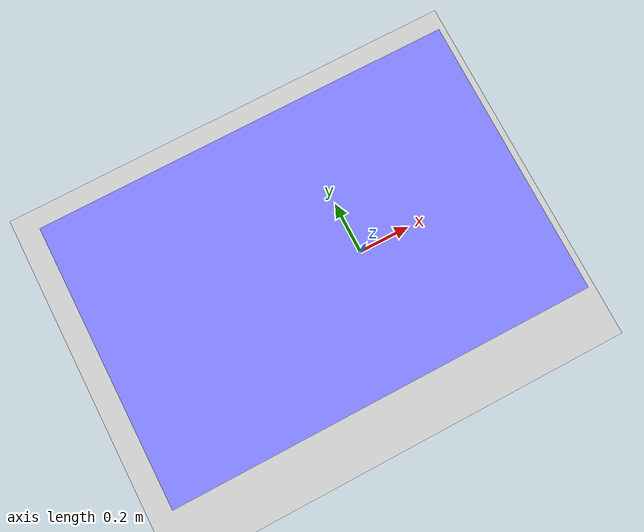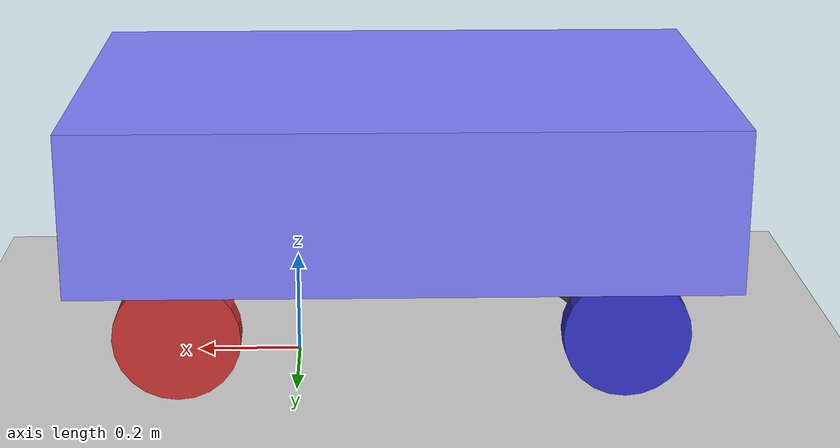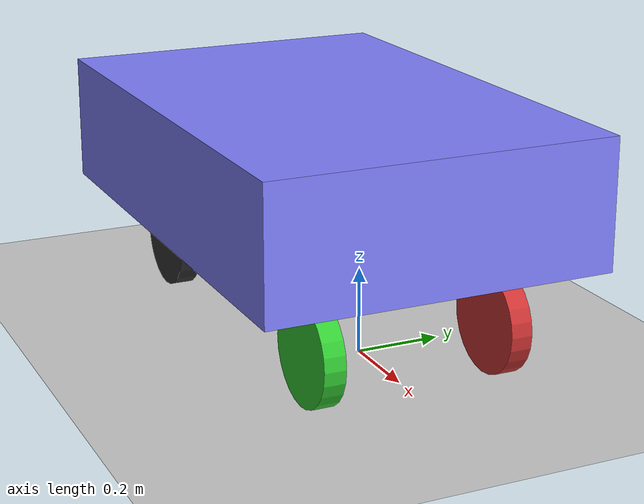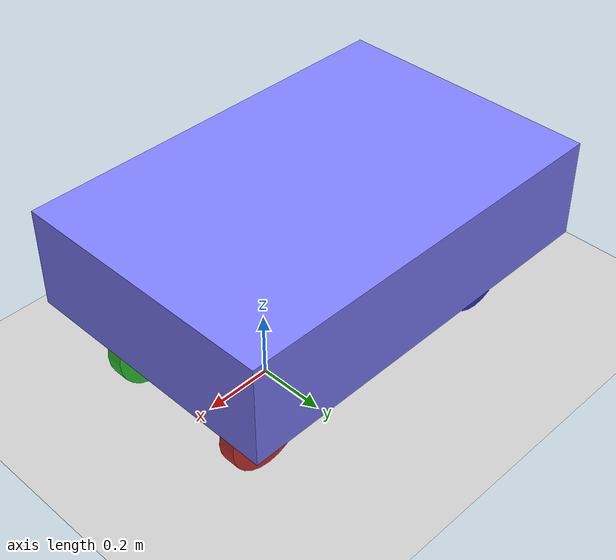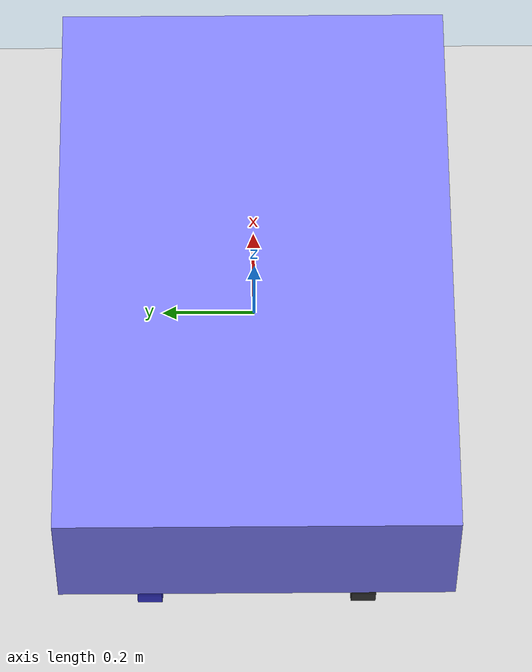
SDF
<?xml version="1.0" ?>
<sdf version="1.6">
  <world name="swerve_drive">

    <physics name="1ms" type="ignored">
      <max_step_size>0.001</max_step_size>
      <real_time_factor>1.0</real_time_factor>
    </physics>
    <plugin
      filename="gz-sim-physics-system"
      name="gz::sim::systems::Physics">
    </plugin>
    <plugin
      filename="gz-sim-user-commands-system"
      name="gz::sim::systems::UserCommands">
    </plugin>
    <plugin
      filename="gz-sim-scene-broadcaster-system"
      name="gz::sim::systems::SceneBroadcaster">
    </plugin>

    <light type="directional" name="sun">
      <cast_shadows>true</cast_shadows>
      <pose>0 0 10 0 0 0</pose>
      <diffuse>1 1 1 1</diffuse>
      <specular>0.5 0.5 0.5 1</specular>
      <attenuation>
        <range>1000</range>
        <constant>0.9</constant>
        <linear>0.01</linear>
        <quadratic>0.001</quadratic>
      </attenuation>
      <direction>-0.5 0.1 -0.9</direction>
    </light>

    <model name="ground_plane">
      <static>true</static>
      <link name="link">
        <collision name="collision">
          <geometry>
            <plane>
              <normal>0 0 1</normal>
              <size>100 100</size>
            </plane>
          </geometry>
          <surface>
            <friction>
              <ode>
                <mu>50</mu>
              </ode>
              <bullet>
                <friction>1</friction>
                <rolling_friction>0.1</rolling_friction>
              </bullet>
            </friction>
          </surface>
        </collision>
        <visual name="visual">
          <geometry>
            <plane>
              <normal>0 0 1</normal>
              <size>100 100</size>
            </plane>
          </geometry>
          <material>
            <ambient>0.8 0.8 0.8 1</ambient>
            <diffuse>0.8 0.8 0.8 1</diffuse>
            <specular>0.8 0.8 0.8 1</specular>
          </material>
        </visual>
      </link>
    </model>

    <model name='vehicle_blue'>
      <pose>0 0 0.41 0 -0 0</pose>

      <link name='chassis'>
        <pose>-0.2 0 0 0 -0 0</pose>
        <inertial>
          <mass>2.0</mass>
          <inertia>
            <ixx>0.118</ixx>
            <ixy>0</ixy>
            <ixz>0</ixz>
            <iyy>0.118</iyy>
            <iyz>0</iyz>
            <izz>0.205</izz>
          </inertia>
        </inertial>
        <visual name='visual'>
          <geometry>
            <box>
              <size>1.2 0.8 0.3</size>
            </box>
          </geometry>
          <material>
            <ambient>0.5 0.5 1.0 1</ambient>
            <diffuse>0.5 0.5 1.0 1</diffuse>
            <specular>0.0 0.0 1.0 1</specular>
          </material>
        </visual>
        <collision name='collision'>
          <geometry>
            <box>
              <size>0.8 0.8 0.3</size>
            </box>
          </geometry>
        </collision>
      </link>

      <link name='front_left_wheel_link'>
        <pose>0.22 0.22 -0.29 -1.5707 0 0</pose>
        <inertial>
          <mass>0.35</mass>
          <inertia>
            <ixx>0.00126</ixx>
            <ixy>0</ixy>
            <ixz>0</ixz>
            <iyy>0.00126</iyy>
            <iyz>0</iyz>
            <izz>0.00252</izz>
          </inertia>
        </inertial>
        <visual name='visual'>
          <geometry>
            <cylinder>
              <length>0.05</length>
              <radius>0.12</radius>
            </cylinder>
          </geometry>
          <material>
            <ambient>0.8 0.2 0.2 1</ambient>
            <diffuse>0.8 0.2 0.2 1</diffuse>
            <specular>0.8 0.2 0.2 1</specular>
          </material>
        </visual>
        <collision name='collision'>
          <geometry>
            <cylinder>
              <length>0.05</length>
              <radius>0.12</radius>
            </cylinder>
          </geometry>
          <surface>
            <friction>
              <ode>
                <mu>0.5</mu>
                <mu2>1.0</mu2>
                <fdir1>1 0 0</fdir1>
              </ode>
              <bullet>
                <friction>0.5</friction>
                <friction2>1.0</friction2>
                <rolling_friction>0.1</rolling_friction>
              </bullet>
            </friction>
          </surface>
        </collision>
      </link>

      <link name='front_right_wheel_link'>
        <pose>0.22 -0.22 -0.29 -1.5707 0 0</pose>
        <inertial>
          <mass>0.35</mass>
          <inertia>
            <ixx>0.00126</ixx>
            <ixy>0</ixy>
            <ixz>0</ixz>
            <iyy>0.00126</iyy>
            <iyz>0</iyz>
            <izz>0.00252</izz>
          </inertia>
        </inertial>
        <visual name='visual'>
          <geometry>
            <cylinder>
              <length>0.05</length>
              <radius>0.12</radius>
            </cylinder>
          </geometry>
          <material>
            <ambient>0.2 0.8 0.2 1</ambient>
            <diffuse>0.2 0.8 0.2 1</diffuse>
            <specular>0.2 0.8 0.2 1</specular>
          </material>
        </visual>
        <collision name='collision'>
          <geometry>
            <cylinder>
              <length>0.05</length>
              <radius>0.12</radius>
            </cylinder>
          </geometry>
          <surface>
            <friction>
              <ode>
                <mu>0.5</mu>
                <mu2>1.0</mu2>
                <fdir1>1 0 0</fdir1>
              </ode>
              <bullet>
                <friction>0.5</friction>
                <friction2>1.0</friction2>
                <rolling_friction>0.1</rolling_friction>
              </bullet>
            </friction>
          </surface>
        </collision>
      </link>

      <link name='back_left_wheel_link'>
        <pose>-0.62 0.22 -0.29 -1.5707 0 0</pose>
        <inertial>
          <mass>0.35</mass>
          <inertia>
            <ixx>0.00126</ixx>
            <ixy>0</ixy>
            <ixz>0</ixz>
            <iyy>0.00126</iyy>
            <iyz>0</iyz>
            <izz>0.00252</izz>
          </inertia>
        </inertial>
        <visual name='visual'>
          <geometry>
            <cylinder>
              <length>0.05</length>
              <radius>0.12</radius>
            </cylinder>
          </geometry>
          <material>
            <ambient>0.2 0.2 0.8 1</ambient>
            <diffuse>0.2 0.2 0.8 1</diffuse>
            <specular>0.2 0.2 0.8 1</specular>
          </material>
        </visual>
        <collision name='collision'>
          <geometry>
            <cylinder>
              <length>0.05</length>
              <radius>0.12</radius>
            </cylinder>
          </geometry>
          <surface>
            <friction>
              <ode>
                <mu>0.5</mu>
                <mu2>1.0</mu2>
                <fdir1>1 0 0</fdir1>
              </ode>
              <bullet>
                <friction>0.5</friction>
                <friction2>1.0</friction2>
                <rolling_friction>0.1</rolling_friction>
              </bullet>
            </friction>
          </surface>
        </collision>
      </link>

      <link name='back_right_wheel_link'>
        <pose>-0.62 -0.22 -0.29 -1.5707 0 0</pose>
        <inertial>
          <mass>0.35</mass>
          <inertia>
            <ixx>0.00126</ixx>
            <ixy>0</ixy>
            <ixz>0</ixz>
            <iyy>0.00126</iyy>
            <iyz>0</iyz>
            <izz>0.00252</izz>
          </inertia>
        </inertial>
        <visual name='visual'>
          <geometry>
            <cylinder>
              <length>0.05</length>
              <radius>0.12</radius>
            </cylinder>
          </geometry>
          <material>
            <ambient>0.2 0.2 0.2 1</ambient>
            <diffuse>0.2 0.2 0.2 1</diffuse>
            <specular>0.2 0.2 0.2 1</specular>
          </material>
        </visual>
        <collision name='collision'>
          <geometry>
            <cylinder>
              <length>0.05</length>
              <radius>0.12</radius>
            </cylinder>
          </geometry>
          <surface>
            <friction>
              <ode>
                <mu>0.5</mu>
                <mu2>1.0</mu2>
                <fdir1>1 0 0</fdir1>
              </ode>
              <bullet>
                <friction>0.5</friction>
                <friction2>1.0</friction2>
                <rolling_friction>0.1</rolling_friction>
              </bullet>
            </friction>
          </surface>
        </collision>
      </link>

      <link name="front_left_steering_link">
        <pose>0.22 0.22 -0.16 0 0 0</pose>
        <inertial>
          <mass>0.08</mass>
          <inertia>
            <ixx>0.000135</ixx>
            <iyy>0.000135</iyy>
            <izz>0.000218</izz>
          </inertia>
        </inertial>
        <visual name="steering_link_visual">
          <pose>0 0 0 0 0 0</pose>
          <geometry>
            <cylinder>
              <length>0.018</length>
              <radius>0.13</radius>
            </cylinder>
          </geometry>
          <material>
            <ambient>1 1 1</ambient>
            <diffuse>1 1 1</diffuse>
          </material>
        </visual>
      </link>

      <link name="front_right_steering_link">
        <pose>0.22 -0.22 -0.16 0 0 0</pose>
        <inertial>
          <mass>0.08</mass>
          <inertia>
            <ixx>0.000135</ixx>
            <iyy>0.000135</iyy>
            <izz>0.000218</izz>
          </inertia>
        </inertial>
        <visual name="steering_link_visual">
          <pose>0 0 0 0 0 0</pose>
          <geometry>
            <cylinder>
              <length>0.018</length>
              <radius>0.13</radius>
            </cylinder>
          </geometry>
          <material>
            <ambient>1 1 1</ambient>
            <diffuse>1 1 1</diffuse>
          </material>
        </visual>
      </link>

      <link name="back_left_steering_link">
        <pose>-0.62 0.22 -0.16 0 0 0</pose>
        <inertial>
          <mass>0.08</mass>
          <inertia>
            <ixx>0.000135</ixx>
            <iyy>0.000135</iyy>
            <izz>0.000218</izz>
          </inertia>
        </inertial>
        <visual name="steering_link_visual">
          <pose>0 0 0 0 0 0</pose>
          <geometry>
            <cylinder>
              <length>0.018</length>
              <radius>0.13</radius>
            </cylinder>
          </geometry>
          <material>
            <ambient>1 1 1</ambient>
            <diffuse>1 1 1</diffuse>
          </material>
        </visual>
      </link>

      <link name="back_right_steering_link">
        <pose>-0.62 -0.22 -0.16 0 0 0</pose>
        <inertial>
          <mass>0.08</mass>
          <inertia>
            <ixx>0.000135</ixx>
            <iyy>0.000135</iyy>
            <izz>0.000218</izz>
          </inertia>
        </inertial>
        <visual name="steering_link_visual">
          <pose>0 0 0 0 0 0</pose>
          <geometry>
            <cylinder>
              <length>0.018</length>
              <radius>0.13</radius>
            </cylinder>
          </geometry>
          <material>
            <ambient>1 1 1</ambient>
            <diffuse>1 1 1</diffuse>
          </material>
        </visual>
      </link>

      <joint name="front_left_steering_joint" type="revolute">
        <parent>chassis</parent>
        <child>front_left_steering_link</child>
        <axis>
          <xyz>0 0 1</xyz>
          <limit>
            <lower>-1.79769e+308</lower>
            <upper>1.79769e+308</upper>
            <velocity>20.0</velocity>
            <effort>25</effort>
          </limit>
          <use_parent_model_frame>1</use_parent_model_frame>
        </axis>
      </joint>

      <joint name="front_right_steering_joint" type="revolute">
        <parent>chassis</parent>
        <child>front_right_steering_link</child>
        <axis>
          <xyz>0 0 1</xyz>
          <limit>
            <lower>-1.79769e+308</lower>
            <upper>1.79769e+308</upper>
            <velocity>20.0</velocity>
            <effort>25</effort>
          </limit>
          <use_parent_model_frame>1</use_parent_model_frame>
        </axis>
      </joint>

      <joint name="back_left_steering_joint" type="revolute">
        <parent>chassis</parent>
        <child>back_left_steering_link</child>
        <axis>
          <xyz>0 0 1</xyz>
          <limit>
            <lower>-1.79769e+308</lower>
            <upper>1.79769e+308</upper>
            <velocity>20.0</velocity>
            <effort>25</effort>
          </limit>
          <use_parent_model_frame>1</use_parent_model_frame>
        </axis>
      </joint>

      <joint name="back_right_steering_joint" type="revolute">
        <parent>chassis</parent>
        <child>back_right_steering_link</child>
        <axis>
          <xyz>0 0 1</xyz>
          <limit>
            <lower>-1.79769e+308</lower>
            <upper>1.79769e+308</upper>
            <velocity>20.0</velocity>
            <effort>25</effort>
          </limit>
          <use_parent_model_frame>1</use_parent_model_frame>
        </axis>
      </joint>

      <joint name='front_left_wheel_joint' type='revolute'>
        <parent>front_left_steering_link</parent>
        <child>front_left_wheel_link</child>
        <axis>
          <xyz>0 0 1</xyz>
          <limit>
            <lower>-1.79769e+308</lower>
            <upper>1.79769e+308</upper>
          </limit>
        </axis>
      </joint>

      <joint name='front_right_wheel_joint' type='revolute'>
        <parent>front_right_steering_link</parent>
        <child>front_right_wheel_link</child>
        <axis>
          <xyz>0 0 1</xyz>
          <limit>
            <lower>-1.79769e+308</lower>
            <upper>1.79769e+308</upper>
          </limit>
        </axis>
      </joint>

      <joint name='back_left_wheel_joint' type='revolute'>
        <parent>back_left_steering_link</parent>
        <child>back_left_wheel_link</child>
        <axis>
          <xyz>0 0 1</xyz>
          <limit>
            <lower>-1.79769e+308</lower>
            <upper>1.79769e+308</upper>
          </limit>
        </axis>
      </joint>

      <joint name='back_right_wheel_joint' type='revolute'>
        <parent>back_right_steering_link</parent>
        <child>back_right_wheel_link</child>
        <axis>
          <xyz>0 0 1</xyz>
          <limit>
            <lower>-1.79769e+308</lower>
            <upper>1.79769e+308</upper>
          </limit>
        </axis>
      </joint>

      <plugin
        filename="gz-sim-swerve-drive-system"
        name="gz::sim::systems::SwerveDrive">
        <front_left_wheel_joint>front_left_wheel_joint</front_left_wheel_joint>
        <front_right_wheel_joint>front_right_wheel_joint</front_right_wheel_joint>
        <back_left_wheel_joint>back_left_wheel_joint</back_left_wheel_joint>
        <back_right_wheel_joint>back_right_wheel_joint</back_right_wheel_joint>
        <front_left_steering_joint>front_left_steering_joint</front_left_steering_joint>
        <front_right_steering_joint>front_right_steering_joint</front_right_steering_joint>
        <back_left_steering_joint>back_left_steering_joint</back_left_steering_joint>
        <back_right_steering_joint>back_right_steering_joint</back_right_steering_joint>
        <wheel_separation>0.44</wheel_separation>
        <wheelbase>0.84</wheelbase>
        <wheel_radius>0.12</wheel_radius>
        <limit_speed_on_steering_err>true</limit_speed_on_steering_err>
        <steering_err_threshold>0.314149</steering_err_threshold>
        <speed_limit_power>2</speed_limit_power>
        <min_linear_acceleration>-1.0</min_linear_acceleration>
        <max_linear_acceleration>1.0</max_linear_acceleration>
        <min_angular_acceleration>-2.0</min_angular_acceleration>
        <max_angular_acceleration>2.0</max_angular_acceleration>
        <min_linear_velocity>-0.5</min_linear_velocity>
        <max_linear_velocity>0.5</max_linear_velocity>
        <min_angular_velocity>-1.0</min_angular_velocity>
        <max_angular_velocity>1.0</max_angular_velocity>
        <steer_p_gain>2</steer_p_gain>
        <topic>/model/foo/cmdvel</topic>
        <odom_topic>/model/bar/odom</odom_topic>
        <tf_topic>tf_foo</tf_topic>
      </plugin>

    </model>

  </world>
</sdf>
